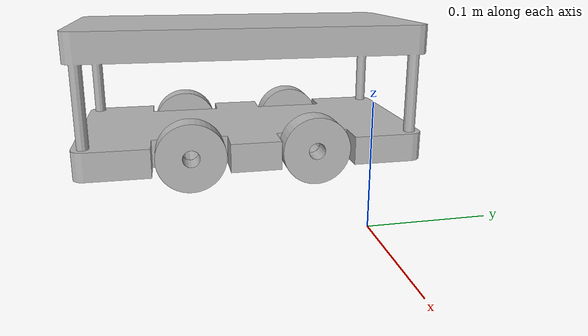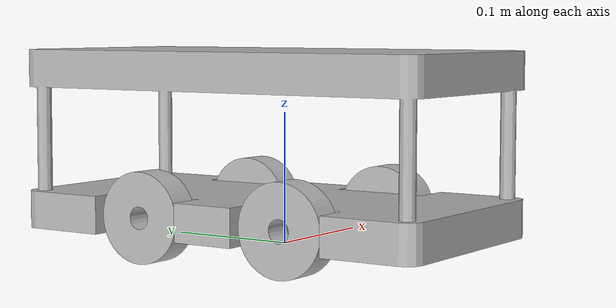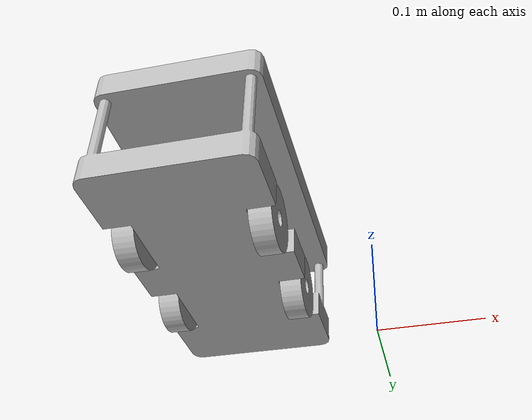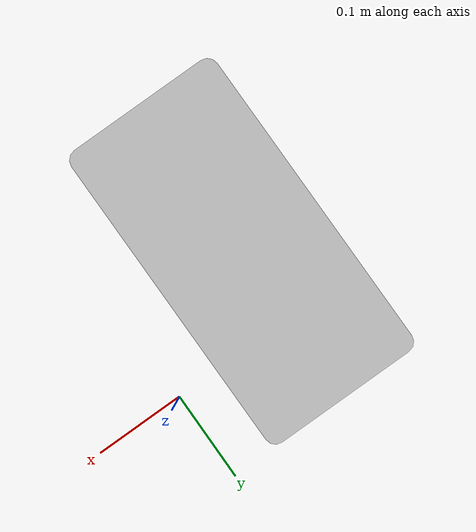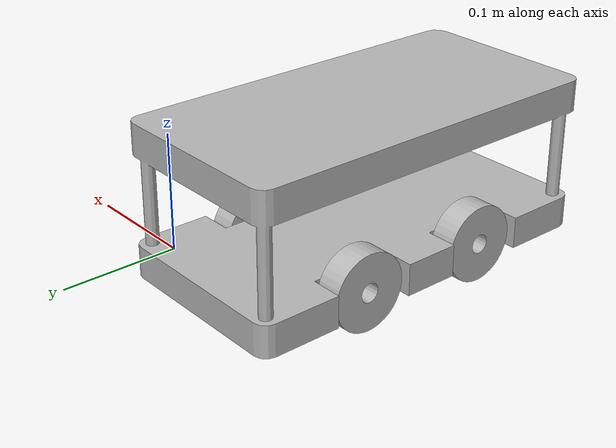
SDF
<?xml version="1.0" ?>
<sdf version="1.8">
  <model name="my_robot">
    <pose>0 0 0 0 0 -1.5708</pose>

    <link name="base_link">
      <inertial>
        <pose>0.0784 -0.123 0.025 0 0 0</pose>
        <mass>6.0</mass>
        <inertia>
          <ixx>0.08</ixx>
          <iyy>0.10</iyy>
          <izz>0.12</izz>
          <ixy>0</ixy><ixz>0</ixz><iyz>0</iyz>
        </inertia>
      </inertial>

      <collision name="base_collision">
        <pose>0.0784 -0.123 0.09 0 0 0</pose>
        <geometry>
          <box>
            <size>0.28 0.16 0.035</size>
          </box>
        </geometry>
      </collision>

      <visual name="base_visual">
        <geometry>
          <mesh><uri>file://meshes/base_link.STL</uri></mesh>
        </geometry>
      </visual>
    </link>

    <link name="wheel1">
      <pose>0.024194 -0.183 0.042737 1.5708 -0.7627 0</pose>
      <inertial>
        <mass>0.053</mass>
        <inertia>
          <ixx>1.4e-5</ixx><iyy>1.4e-5</iyy><izz>2.5e-5</izz>
          <ixy>0</ixy><ixz>0</ixz><iyz>0</iyz>
        </inertia>
      </inertial>
      <collision name="wheel1_collision">
        <geometry><cylinder><radius>0.035</radius><length>0.022</length></cylinder></geometry>
        <surface><friction><ode><mu>8.0</mu><mu2>8.0</mu2></ode></friction></surface>
      </collision>
      <visual name="wheel1_visual">
        <geometry><mesh><uri>file://meshes/wheel1.STL</uri></mesh></geometry>
      </visual>
    </link>

    <joint name="wheel1_joint" type="revolute">
      <parent>base_link</parent>
      <child>wheel1</child>
      <axis>
        <xyz>0 0 1</xyz>
        <limit><lower>-1000000</lower><upper>1000000</upper><effort>100</effort><velocity>100</velocity></limit>
        <dynamics><damping>0.3</damping><friction>0.1</friction></dynamics>
      </axis>
    </joint>

    <link name="wheel2">
      <pose>0.13264 -0.183 0.042737 -1.5708 0.8893 -3.1416</pose>
      <inertial>
        <mass>0.053</mass>
        <inertia>
          <ixx>1.4e-5</ixx><iyy>1.4e-5</iyy><izz>2.5e-5</izz>
          <ixy>0</ixy><ixz>0</ixz><iyz>0</iyz>
        </inertia>
      </inertial>
      <collision name="wheel2_collision">
        <geometry><cylinder><radius>0.035</radius><length>0.022</length></cylinder></geometry>
        <surface><friction><ode><mu>8.0</mu><mu2>8.0</mu2></ode></friction></surface>
      </collision>
      <visual name="wheel2_visual">
        <geometry><mesh><uri>file://meshes/wheel2.STL</uri></mesh></geometry>
      </visual>
    </link>

    <joint name="wheel2_joint" type="revolute">
      <parent>base_link</parent>
      <child>wheel2</child>
      <axis>
        <xyz>0 0 1</xyz>
        <limit><lower>-1000000</lower><upper>1000000</upper><effort>100</effort><velocity>100</velocity></limit>
        <dynamics><damping>0.3</damping><friction>0.1</friction></dynamics>
      </axis>
    </joint>

    <link name="wheel3">
      <pose>0.024194 -0.062995 0.042737 1.5708 -0.80752 0</pose>
      <inertial>
        <mass>0.053</mass>
        <inertia>
          <ixx>1.4e-5</ixx><iyy>1.4e-5</iyy><izz>2.5e-5</izz>
          <ixy>0</ixy><ixz>0</ixz><iyz>0</iyz>
        </inertia>
      </inertial>
      <collision name="wheel3_collision">
        <geometry><cylinder><radius>0.035</radius><length>0.022</length></cylinder></geometry>
        <surface><friction><ode><mu>8.0</mu><mu2>8.0</mu2></ode></friction></surface>
      </collision>
      <visual name="wheel3_visual">
        <geometry><mesh><uri>file://meshes/wheel3.STL</uri></mesh></geometry>
      </visual>
    </link>

    <joint name="wheel3_joint" type="revolute">
      <parent>base_link</parent>
      <child>wheel3</child>
      <axis>
        <xyz>0 0 1</xyz>
        <limit><lower>-1000000</lower><upper>1000000</upper><effort>100</effort><velocity>100</velocity></limit>
        <dynamics><damping>0.3</damping><friction>0.1</friction></dynamics>
      </axis>
    </joint>

    <link name="wheel4">
      <pose>0.13264 -0.062995 0.042737 -1.5708 -0.77947 3.1416</pose>
      <inertial>
        <mass>0.053</mass>
        <inertia>
          <ixx>1.4e-5</ixx><iyy>1.4e-5</iyy><izz>2.5e-5</izz>
          <ixy>0</ixy><ixz>0</ixz><iyz>0</iyz>
        </inertia>
      </inertial>
      <collision name="wheel4_collision">
        <geometry><cylinder><radius>0.035</radius><length>0.022</length></cylinder></geometry>
        <surface><friction><ode><mu>8.0</mu><mu2>8.0</mu2></ode></friction></surface>
      </collision>
      <visual name="wheel4_visual">
        <geometry><mesh><uri>file://meshes/wheel4.STL</uri></mesh></geometry>
      </visual>
    </link>

    <joint name="wheel4_joint" type="revolute">
      <parent>base_link</parent>
      <child>wheel4</child>
      <axis>
        <xyz>0 0 1</xyz>
        <limit><lower>-1000000</lower><upper>1000000</upper><effort>100</effort><velocity>100</velocity></limit>
        <dynamics><damping>0.3</damping><friction>0.1</friction></dynamics>
      </axis>
    </joint>

    <link name="lidar_link">
      <pose>0.08 -0.123 0.20 0 0 0</pose>
      <sensor name="gpu_lidar" type="gpu_lidar">
        <topic>/scan</topic>
        <update_rate>10</update_rate>
        <visualize>true</visualize>
        <lidar>
          <scan><horizontal><samples>720</samples><resolution>1</resolution><min_angle>-3.14159</min_angle><max_angle>3.14159</max_angle></horizontal></scan>
          <range><min>0.12</min><max>8.0</max><resolution>0.01</resolution></range>
        </lidar>
        <always_on>true</always_on>
      </sensor>
    </link>

    <joint name="lidar_joint" type="fixed">
      <parent>base_link</parent>
      <child>lidar_link</child>
    </joint>

    <plugin filename="gz-sim-diff-drive-system" name="gz::sim::systems::DiffDrive">
      <left_joint>wheel1_joint</left_joint>
      <left_joint>wheel3_joint</left_joint>
      <right_joint>wheel2_joint</right_joint>
      <right_joint>wheel4_joint</right_joint>
      <wheel_separation>0.366</wheel_separation>
      <wheel_radius>0.035</wheel_radius>
      <topic>/cmd_vel</topic>
      <odom_topic>/odom</odom_topic>
      <frame_id>odom</frame_id>
      <child_frame_id>base_link</child_frame_id>
      <odom_publish_frequency>30</odom_publish_frequency>
      <max_linear_acceleration>0.4</max_linear_acceleration>
      <max_angular_acceleration>0.6</max_angular_acceleration>
    </plugin>

  </model>
</sdf>
